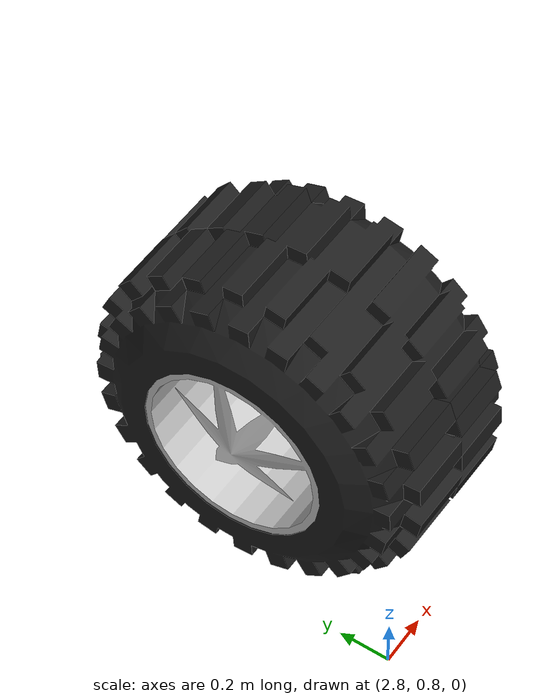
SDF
<?xml version="1.0"?>
<sdf version="1.4">
  <model name="tire1">
    <static>true</static>
    <link name="link">
      <collision name="collision">
        <geometry>
          <mesh>
             <uri>model://tire1/models/tire.dae</uri>
		<scale>0.5 0.5 0.5</scale>
          </mesh>
        </geometry>
      </collision>
      <visual name="visual">
         <geometry>
          <mesh>
		<uri>model://tire1/models/tire.dae</uri>
		<scale>0.5 0.5 0.5</scale>
          </mesh>
        </geometry>
      </visual>
    </link>
  </model>
</sdf>
